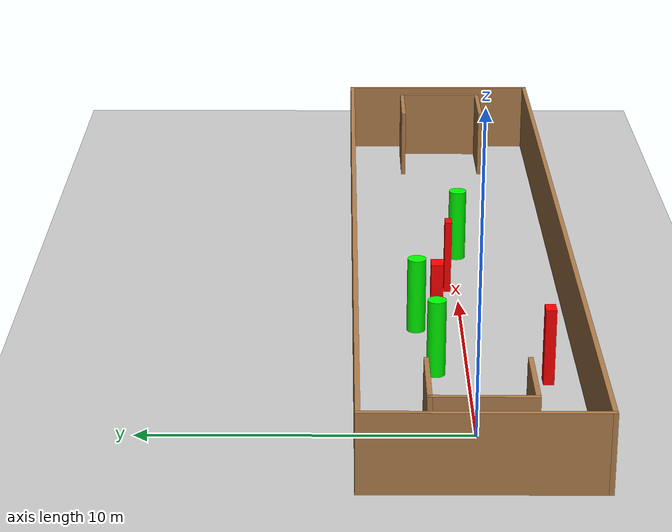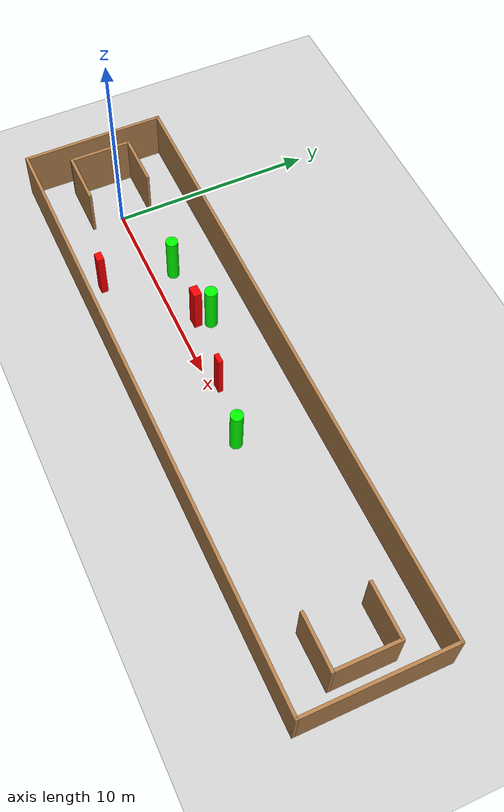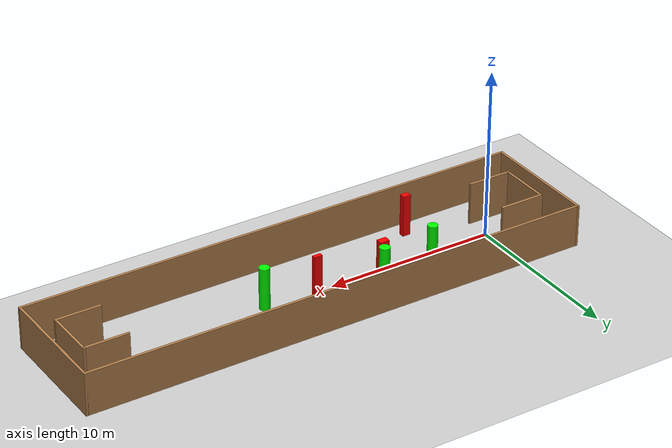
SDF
<sdf version="1.7">
 <world name="default">
  <light name="sun" type="directional">
   <pose>0 0 10 0 -0 0</pose>
   <diffuse>0.8 0.8 0.8 1</diffuse>
   <specular>0.2 0.2 0.2 1</specular>
   <attenuation>
    <range>1000</range>
    <constant>0.9</constant>
    <linear>0.01</linear>
    <quadratic>0.001</quadratic>
   </attenuation>
   <direction>-0.5 0.1 -0.9</direction>
   <spot><inner_angle>0</inner_angle><outer_angle>0</outer_angle><falloff>0</falloff></spot>
  </light>
  <model name="ground_plane">
   <static>1</static>
   <link name="link">
    <collision name="collision">
     <geometry><plane><normal>0 0 1</normal><size>100 100</size></plane></geometry>
     <surface>
      <contact><collide_bitmask>65535</collide_bitmask></contact>
      <friction><ode><mu>100</mu><mu2>50</mu2></ode></friction>
     </surface>
    </collision>
    <visual name="visual">
     <cast_shadows>0</cast_shadows>
     <geometry><plane><normal>0 0 1</normal><size>100 100</size></plane></geometry>
     <material>
      <script><uri>file://media/materials/scripts/gazebo.material</uri><name>Gazebo/Grey</name></script>
     </material>
    </visual>
   </link>
  </model>
  <gravity>0 0 -9.8</gravity>
  <magnetic_field>6e-06 2.3e-05 -4.2e-05</magnetic_field>
  <atmosphere type="adiabatic"/>
  <physics type="ode">
   <max_step_size>0.001</max_step_size>
   <real_time_factor>1</real_time_factor>
   <real_time_update_rate>1000</real_time_update_rate>
  </physics>
  <scene><ambient>0.4 0.4 0.4 1</ambient><background>0.7 0.7 0.7 1</background><shadows>1</shadows></scene>
  <spherical_coordinates>
   <surface_model>EARTH_WGS84</surface_model>
   <latitude_deg>0</latitude_deg>
   <longitude_deg>0</longitude_deg>
   <elevation>0</elevation>
   <heading_deg>0</heading_deg>
  </spherical_coordinates>
  <model name="my_base_walls">
   <link name="Wall_0">
    <collision name="Wall_0_Collision">
     <geometry><box><size>7.15 0.15 2.5</size></box></geometry>
     <pose>0 0 1.25 0 -0 0</pose>
    </collision>
    <visual name="Wall_0_Visual">
     <pose>0 0 1.25 0 -0 0</pose>
     <geometry><box><size>7.15 0.15 2.5</size></box></geometry>
     <material>
      <script><uri>file://media/materials/scripts/gazebo.material</uri><name>Gazebo/Wood</name></script>
      <ambient>1 1 1 1</ambient>
     </material>
     <meta><layer>0</layer></meta>
    </visual>
    <pose>-15 0 0 0 -0 1.5708</pose>
   </link>
   <link name="Wall_10">
    <collision name="Wall_10_Collision">
     <geometry><box><size>2.65 0.15 2.5</size></box></geometry>
     <pose>0 0 1.25 0 -0 0</pose>
    </collision>
    <visual name="Wall_10_Visual">
     <pose>0 0 1.25 0 -0 0</pose>
     <geometry><box><size>2.65 0.15 2.5</size></box></geometry>
     <material>
      <script><uri>file://media/materials/scripts/gazebo.material</uri><name>Gazebo/Wood</name></script>
      <ambient>1 1 1 1</ambient>
     </material>
     <meta><layer>0</layer></meta>
    </visual>
    <pose>-12.75 -1.5 0 0 -0 0</pose>
   </link>
   <link name="Wall_12">
    <collision name="Wall_12_Collision">
     <geometry><box><size>2.65 0.15 2.5</size></box></geometry>
     <pose>0 0 1.25 0 -0 0</pose>
    </collision>
    <visual name="Wall_12_Visual">
     <pose>0 0 1.25 0 -0 0</pose>
     <geometry><box><size>2.65 0.15 2.5</size></box></geometry>
     <material>
      <script><uri>file://media/materials/scripts/gazebo.material</uri><name>Gazebo/Wood</name></script>
      <ambient>1 1 1 1</ambient>
     </material>
     <meta><layer>0</layer></meta>
    </visual>
    <pose>-12.75 1.5 0 0 -0 0</pose>
   </link>
   <link name="Wall_14">
    <collision name="Wall_14_Collision">
     <geometry><box><size>3.15 0.15 2.5</size></box></geometry>
     <pose>0 0 1.25 0 -0 0</pose>
    </collision>
    <visual name="Wall_14_Visual">
     <pose>0 0 1.25 0 -0 0</pose>
     <geometry><box><size>3.15 0.15 2.5</size></box></geometry>
     <material>
      <script><uri>file://media/materials/scripts/gazebo.material</uri><name>Gazebo/Wood</name></script>
      <ambient>1 1 1 1</ambient>
     </material>
     <meta><layer>0</layer></meta>
    </visual>
    <pose>14 0 0 0 -0 -1.5708</pose>
   </link>
   <link name="Wall_15">
    <collision name="Wall_15_Collision">
     <geometry><box><size>2.65 0.15 2.5</size></box></geometry>
     <pose>0 0 1.25 0 -0 0</pose>
    </collision>
    <visual name="Wall_15_Visual">
     <pose>0 0 1.25 0 -0 0</pose>
     <geometry><box><size>2.65 0.15 2.5</size></box></geometry>
     <material>
      <script><uri>file://media/materials/scripts/gazebo.material</uri><name>Gazebo/Wood</name></script>
      <ambient>1 1 1 1</ambient>
     </material>
     <meta><layer>0</layer></meta>
    </visual>
    <pose>12.75 -1.5 0 0 -0 3.14159</pose>
   </link>
   <link name="Wall_17">
    <collision name="Wall_17_Collision">
     <geometry><box><size>2.65 0.15 2.5</size></box></geometry>
     <pose>0 0 1.25 0 -0 0</pose>
    </collision>
    <visual name="Wall_17_Visual">
     <pose>0 0 1.25 0 -0 0</pose>
     <geometry><box><size>2.65 0.15 2.5</size></box></geometry>
     <material>
      <script><uri>file://media/materials/scripts/gazebo.material</uri><name>Gazebo/Wood</name></script>
      <ambient>1 1 1 1</ambient>
     </material>
     <meta><layer>0</layer></meta>
    </visual>
    <pose>12.75 1.5 0 0 -0 3.14159</pose>
   </link>
   <link name="Wall_2">
    <collision name="Wall_2_Collision">
     <geometry><box><size>30.15 0.15 2.5</size></box></geometry>
     <pose>0 0 1.25 0 -0 0</pose>
    </collision>
    <visual name="Wall_2_Visual">
     <pose>0 0 1.25 0 -0 0</pose>
     <geometry><box><size>30.15 0.15 2.5</size></box></geometry>
     <material>
      <script><uri>file://media/materials/scripts/gazebo.material</uri><name>Gazebo/Wood</name></script>
      <ambient>1 1 1 1</ambient>
     </material>
     <meta><layer>0</layer></meta>
    </visual>
    <pose>-0 -3.5 0 0 -0 0</pose>
   </link>
   <link name="Wall_4">
    <collision name="Wall_4_Collision">
     <geometry><box><size>30.15 0.15 2.5</size></box></geometry>
     <pose>0 0 1.25 0 -0 0</pose>
    </collision>
    <visual name="Wall_4_Visual">
     <pose>0 0 1.25 0 -0 0</pose>
     <geometry><box><size>30.15 0.15 2.5</size></box></geometry>
     <material>
      <script><uri>file://media/materials/scripts/gazebo.material</uri><name>Gazebo/Wood</name></script>
      <ambient>1 1 1 1</ambient>
     </material>
     <meta><layer>0</layer></meta>
    </visual>
    <pose>-0 3.5 0 0 -0 0</pose>
   </link>
   <link name="Wall_6">
    <collision name="Wall_6_Collision">
     <geometry><box><size>7.15 0.15 2.5</size></box></geometry>
     <pose>0 0 1.25 0 -0 0</pose>
    </collision>
    <visual name="Wall_6_Visual">
     <pose>0 0 1.25 0 -0 0</pose>
     <geometry><box><size>7.15 0.15 2.5</size></box></geometry>
     <material>
      <script><uri>file://media/materials/scripts/gazebo.material</uri><name>Gazebo/Wood</name></script>
      <ambient>1 1 1 1</ambient>
     </material>
     <meta><layer>0</layer></meta>
    </visual>
    <pose>15 0 0 0 -0 -1.5708</pose>
   </link>
   <link name="Wall_9">
    <collision name="Wall_9_Collision">
     <geometry><box><size>3.15 0.15 2.5</size></box></geometry>
     <pose>0 0 1.25 0 -0 0</pose>
    </collision>
    <visual name="Wall_9_Visual">
     <pose>0 0 1.25 0 -0 0</pose>
     <geometry><box><size>3.15 0.15 2.5</size></box></geometry>
     <material>
      <script><uri>file://media/materials/scripts/gazebo.material</uri><name>Gazebo/Wood</name></script>
      <ambient>1 1 1 1</ambient>
     </material>
     <meta><layer>0</layer></meta>
    </visual>
    <pose>-14 0 0 0 -0 -1.5708</pose>
   </link>
   <static>1</static>
   <pose>11.5 0 0 0 -0 0</pose>
  </model>
  <model name="cylinder1">
   <static>1</static>
   <link name="link">
    <inertial>
     <mass>1</mass>
     <inertia><ixx>0.5</ixx><ixy>0</ixy><ixz>0</ixz><iyy>0.5</iyy><iyz>0</iyz><izz>1</izz></inertia>
    </inertial>
    <collision name="collision">
     <geometry><cylinder><radius>0.2946605518050345</radius><length>2.5</length></cylinder></geometry>
    </collision>
    <visual name="visual">
     <geometry><cylinder><radius>0.2946605518050345</radius><length>2.5</length></cylinder></geometry>
     <material>
      <ambient>0 1 0 1</ambient>
      <diffuse>0 1 0 1</diffuse>
      <specular>0.1 0.1 0.1 1</specular>
      <emissive>0 0 0 0</emissive>
     </material>
    </visual>
   </link>
   <pose>4.266119471500895 1.0023016748844071 1.25 0 0 0</pose>
  </model>
  <model name="cylinder2">
   <static>1</static>
   <link name="link">
    <inertial>
     <mass>1</mass>
     <inertia><ixx>0.5</ixx><ixy>0</ixy><ixz>0</ixz><iyy>0.5</iyy><iyz>0</iyz><izz>1</izz></inertia>
    </inertial>
    <collision name="collision">
     <geometry><cylinder><radius>0.30364870310480385</radius><length>2.5</length></cylinder></geometry>
    </collision>
    <visual name="visual">
     <geometry><cylinder><radius>0.30364870310480385</radius><length>2.5</length></cylinder></geometry>
     <material>
      <ambient>0 1 0 1</ambient>
      <diffuse>0 1 0 1</diffuse>
      <specular>0.1 0.1 0.1 1</specular>
      <emissive>0 0 0 0</emissive>
     </material>
    </visual>
   </link>
   <pose>7.675412496215662 1.5079424370912715 1.25 0 0 0</pose>
  </model>
  <model name="cylinder3">
   <static>1</static>
   <link name="link">
    <inertial>
     <mass>1</mass>
     <inertia><ixx>0.5</ixx><ixy>0</ixy><ixz>0</ixz><iyy>0.5</iyy><iyz>0</iyz><izz>1</izz></inertia>
    </inertial>
    <collision name="collision">
     <geometry><cylinder><radius>0.29987081768101226</radius><length>2.5</length></cylinder></geometry>
    </collision>
    <visual name="visual">
     <geometry><cylinder><radius>0.29987081768101226</radius><length>2.5</length></cylinder></geometry>
     <material>
      <ambient>0 1 0 1</ambient>
      <diffuse>0 1 0 1</diffuse>
      <specular>0.1 0.1 0.1 1</specular>
      <emissive>0 0 0 0</emissive>
     </material>
    </visual>
   </link>
   <pose>14.080909322699004 -0.14516177508791728 1.25 0 0 0</pose>
  </model>
  <model name="box1">
   <static>1</static>
   <link name="link">
    <inertial>
     <mass>1</mass>
     <inertia><ixx>0.083</ixx><ixy>0</ixy><ixz>0</ixz><iyy>0.083</iyy><iyz>0</iyz><izz>0.083</izz></inertia>
    </inertial>
    <collision name="collision">
     <geometry><box><size>0.4916926975542278 0.22602967345754243 2.5</size></box></geometry>
    </collision>
    <visual name="visual">
     <geometry><box><size>0.4916926975542278 0.22602967345754243 2.5</size></box></geometry>
     <material>
      <ambient>1 0 0 1</ambient>
      <diffuse>1 0 0 1</diffuse>
      <specular>0.1 0.1 0.1 1</specular>
      <emissive>0 0 0 0</emissive>
     </material>
    </visual>
    <sensor name="my_contact" type="contact">
     <contact><collision>box_collision</collision><topic>__default_topic__</topic></contact>
    </sensor>
   </link>
   <pose>11.124330917299075 0.3327238626750937 1.25 0 0 0</pose>
  </model>
  <model name="box2">
   <static>1</static>
   <link name="link">
    <inertial>
     <mass>1</mass>
     <inertia><ixx>0.083</ixx><ixy>0</ixy><ixz>0</ixz><iyy>0.083</iyy><iyz>0</iyz><izz>0.083</izz></inertia>
    </inertial>
    <collision name="collision">
     <geometry><box><size>0.5686091343603574 0.3934289396058363 2.5</size></box></geometry>
    </collision>
    <visual name="visual">
     <geometry><box><size>0.5686091343603574 0.3934289396058363 2.5</size></box></geometry>
     <material>
      <ambient>1 0 0 1</ambient>
      <diffuse>1 0 0 1</diffuse>
      <specular>0.1 0.1 0.1 1</specular>
      <emissive>0 0 0 0</emissive>
     </material>
    </visual>
    <sensor name="my_contact" type="contact">
     <contact><collision>box_collision</collision><topic>__default_topic__</topic></contact>
    </sensor>
   </link>
   <pose>7.357681452140607 0.8692302370825047 1.25 0 0 0</pose>
  </model>
  <model name="box3">
   <static>1</static>
   <link name="link">
    <inertial>
     <mass>1</mass>
     <inertia><ixx>0.083</ixx><ixy>0</ixy><ixz>0</ixz><iyy>0.083</iyy><iyz>0</iyz><izz>0.083</izz></inertia>
    </inertial>
    <collision name="collision">
     <geometry><box><size>0.47471620641918505 0.33791990938865335 2.5</size></box></geometry>
    </collision>
    <visual name="visual">
     <geometry><box><size>0.47471620641918505 0.33791990938865335 2.5</size></box></geometry>
     <material>
      <ambient>1 0 0 1</ambient>
      <diffuse>1 0 0 1</diffuse>
      <specular>0.1 0.1 0.1 1</specular>
      <emissive>0 0 0 0</emissive>
     </material>
    </visual>
    <sensor name="my_contact" type="contact">
     <contact><collision>box_collision</collision><topic>__default_topic__</topic></contact>
    </sensor>
   </link>
   <pose>3.70186710981916 -2.4368290911598494 1.25 0 0 0</pose>
  </model>
 </world>
</sdf>
